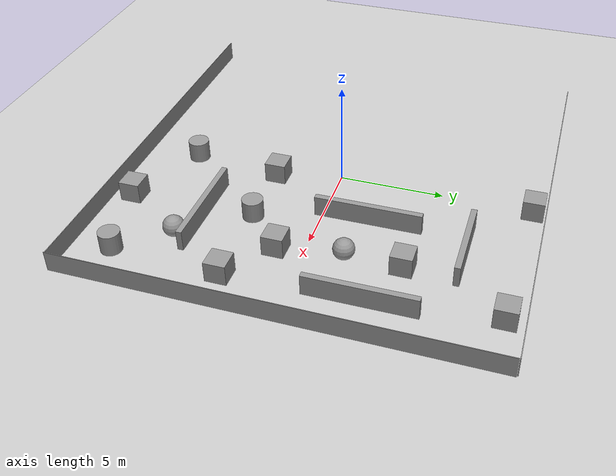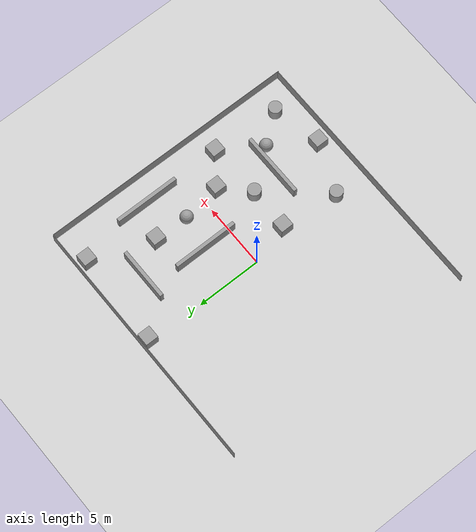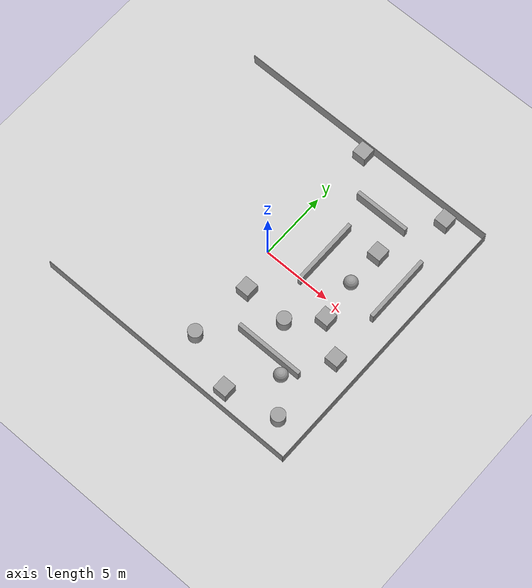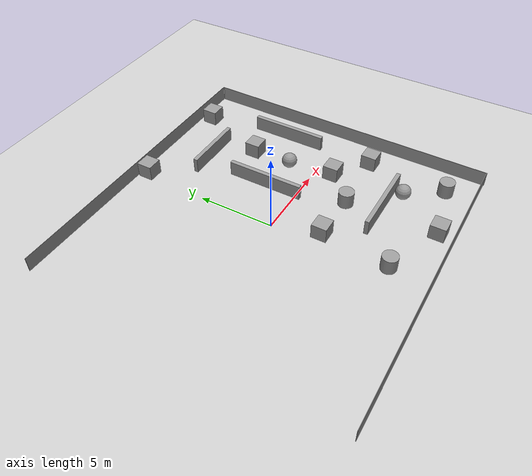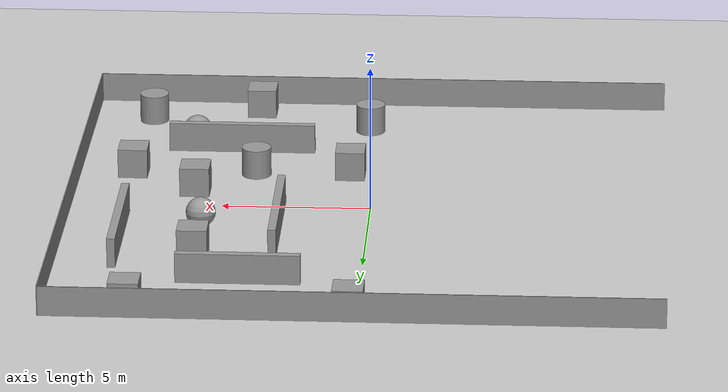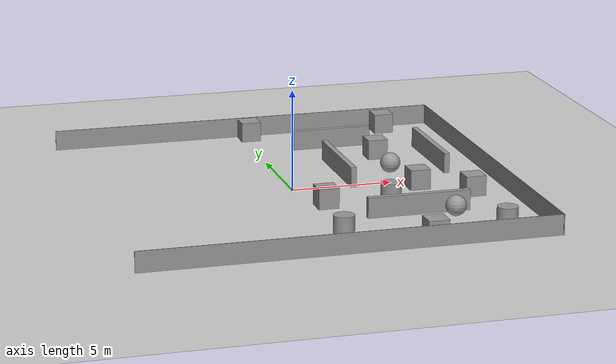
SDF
<sdf version="1.7">
 <world name="default">
  <model name="ground_plane">
   <static>1</static>
   <link name="link">
    <collision name="collision">
     <geometry><plane><normal>0 0 1</normal><size>100 100</size></plane></geometry>
     <surface>
      <contact><collide_bitmask>65535</collide_bitmask></contact>
      <friction><ode><mu>100</mu><mu2>50</mu2></ode></friction>
     </surface>
    </collision>
    <visual name="visual">
     <cast_shadows>0</cast_shadows>
     <geometry><plane><normal>0 0 1</normal><size>100 100</size></plane></geometry>
     <material>
      <script><uri>file://media/materials/scripts/gazebo.material</uri><name>Gazebo/Grey</name></script>
     </material>
    </visual>
   </link>
  </model>
  <model name="m">
   <link name="link_0">
    <inertial>
     <mass>0.665554</mass>
     <inertia><ixx>0.0555244</ixx><ixy>0</ixy><ixz>0</ixz><iyy>22.0844</iyy><iyz>0</iyz><izz>22.029</izz></inertia>
    </inertial>
    <pose>0.242404 -11.0845 0 0 -0 0</pose>
    <visual name="visual">
     <geometry><box><size>19.9295 0.033323 1</size></box></geometry>
     <material>
      <lighting>1</lighting>
      <script><uri>file://media/materials/scripts/gazebo.material</uri><name>Gazebo/Grey</name></script>
      <shader type="pixel"><normal_map>__default__</normal_map></shader>
     </material>
    </visual>
    <collision name="collision">
     <geometry><box><size>19.9295 0.033323 1</size></box></geometry>
     <surface>
      <friction>
       <ode><mu>1</mu><mu2>1</mu2><fdir1>0 0 0</fdir1><slip1>0</slip1><slip2>0</slip2></ode>
       <torsional>
        <coefficient>1</coefficient>
        <patch_radius>0</patch_radius>
        <surface_radius>0</surface_radius>
        <use_patch_radius>1</use_patch_radius>
        <ode><slip>0</slip></ode>
       </torsional>
      </friction>
      <bounce><restitution_coefficient>0</restitution_coefficient><threshold>1e+06</threshold></bounce>
      <contact>
       <collide_without_contact>0</collide_without_contact>
       <collide_without_contact_bitmask>1</collide_without_contact_bitmask>
       <collide_bitmask>1</collide_bitmask>
       <ode>
        <soft_cfm>0</soft_cfm>
        <soft_erp>0.2</soft_erp>
        <kp>1e+13</kp>
        <kd>1</kd>
        <max_vel>0.01</max_vel>
        <min_depth>0</min_depth>
       </ode>
       <bullet>
        <split_impulse>1</split_impulse>
        <split_impulse_penetration_threshold>-0.01</split_impulse_penetration_threshold>
        <soft_cfm>0</soft_cfm>
        <soft_erp>0.2</soft_erp>
        <kp>1e+13</kp>
        <kd>1</kd>
       </bullet>
      </contact>
     </surface>
    </collision>
   </link>
   <link name="link_0_0">
    <inertial>
     <mass>1</mass>
     <inertia><ixx>0.145833</ixx><ixy>0</ixy><ixz>0</ixz><iyy>0.145833</iyy><iyz>0</iyz><izz>0.125</izz></inertia>
    </inertial>
    <pose>4.20277 -4.09935 -0.034602 -0.004806 1e-06 0</pose>
    <visual name="visual">
     <geometry><cylinder><radius>0.5</radius><length>1</length></cylinder></geometry>
     <material>
      <lighting>1</lighting>
      <script><uri>file://media/materials/scripts/gazebo.material</uri><name>Gazebo/Grey</name></script>
      <shader type="pixel"/>
     </material>
    </visual>
    <collision name="collision">
     <geometry><cylinder><radius>0.5</radius><length>1</length></cylinder></geometry>
     <surface>
      <friction>
       <ode><mu>1</mu><mu2>1</mu2><fdir1>0 0 0</fdir1><slip1>0</slip1><slip2>0</slip2></ode>
       <torsional>
        <coefficient>1</coefficient>
        <patch_radius>0</patch_radius>
        <surface_radius>0</surface_radius>
        <use_patch_radius>1</use_patch_radius>
        <ode><slip>0</slip></ode>
       </torsional>
      </friction>
      <bounce><restitution_coefficient>0</restitution_coefficient><threshold>1e+06</threshold></bounce>
      <contact>
       <collide_without_contact>0</collide_without_contact>
       <collide_without_contact_bitmask>1</collide_without_contact_bitmask>
       <collide_bitmask>1</collide_bitmask>
       <ode>
        <soft_cfm>0</soft_cfm>
        <soft_erp>0.2</soft_erp>
        <kp>1e+13</kp>
        <kd>1</kd>
        <max_vel>0.01</max_vel>
        <min_depth>0</min_depth>
       </ode>
       <bullet>
        <split_impulse>1</split_impulse>
        <split_impulse_penetration_threshold>-0.01</split_impulse_penetration_threshold>
        <soft_cfm>0</soft_cfm>
        <soft_erp>0.2</soft_erp>
        <kp>1e+13</kp>
        <kd>1</kd>
       </bullet>
      </contact>
     </surface>
    </collision>
   </link>
   <link name="link_0_1">
    <inertial>
     <mass>1</mass>
     <inertia><ixx>0.1</ixx><ixy>0</ixy><ixz>0</ixz><iyy>0.1</iyy><iyz>0</iyz><izz>0.1</izz></inertia>
    </inertial>
    <pose>6.45955 -6.99136 -0.015862 -0.00386 0 0</pose>
    <visual name="visual">
     <geometry><sphere><radius>0.5</radius></sphere></geometry>
     <material>
      <lighting>1</lighting>
      <script><uri>file://media/materials/scripts/gazebo.material</uri><name>Gazebo/Grey</name></script>
      <shader type="pixel"/>
     </material>
    </visual>
    <collision name="collision">
     <geometry><sphere><radius>0.5</radius></sphere></geometry>
     <surface>
      <friction>
       <ode><mu>1</mu><mu2>1</mu2><fdir1>0 0 0</fdir1><slip1>0</slip1><slip2>0</slip2></ode>
       <torsional>
        <coefficient>1</coefficient>
        <patch_radius>0</patch_radius>
        <surface_radius>0</surface_radius>
        <use_patch_radius>1</use_patch_radius>
        <ode><slip>0</slip></ode>
       </torsional>
      </friction>
      <bounce><restitution_coefficient>0</restitution_coefficient><threshold>1e+06</threshold></bounce>
      <contact>
       <collide_without_contact>0</collide_without_contact>
       <collide_without_contact_bitmask>1</collide_without_contact_bitmask>
       <collide_bitmask>1</collide_bitmask>
       <ode>
        <soft_cfm>0</soft_cfm>
        <soft_erp>0.2</soft_erp>
        <kp>1e+13</kp>
        <kd>1</kd>
        <max_vel>0.01</max_vel>
        <min_depth>0</min_depth>
       </ode>
       <bullet>
        <split_impulse>1</split_impulse>
        <split_impulse_penetration_threshold>-0.01</split_impulse_penetration_threshold>
        <soft_cfm>0</soft_cfm>
        <soft_erp>0.2</soft_erp>
        <kp>1e+13</kp>
        <kd>1</kd>
       </bullet>
      </contact>
     </surface>
    </collision>
   </link>
   <link name="link_0_clone">
    <inertial>
     <mass>0.665554</mass>
     <inertia><ixx>0.0555244</ixx><ixy>0</ixy><ixz>0</ixz><iyy>22.0844</iyy><iyz>0</iyz><izz>22.029</izz></inertia>
    </inertial>
    <pose>0.261289 8.83473 0 0 -0 0</pose>
    <visual name="visual">
     <geometry><box><size>19.9295 0.033323 1</size></box></geometry>
     <material>
      <lighting>1</lighting>
      <script><uri>file://media/materials/scripts/gazebo.material</uri><name>Gazebo/Grey</name></script>
      <shader type="pixel"><normal_map>__default__</normal_map></shader>
     </material>
    </visual>
    <collision name="collision">
     <geometry><box><size>19.9295 0.033323 1</size></box></geometry>
     <surface>
      <friction>
       <ode><mu>1</mu><mu2>1</mu2><fdir1>0 0 0</fdir1><slip1>0</slip1><slip2>0</slip2></ode>
       <torsional>
        <coefficient>1</coefficient>
        <patch_radius>0</patch_radius>
        <surface_radius>0</surface_radius>
        <use_patch_radius>1</use_patch_radius>
        <ode><slip>0</slip></ode>
       </torsional>
      </friction>
      <bounce><restitution_coefficient>0</restitution_coefficient><threshold>1e+06</threshold></bounce>
      <contact>
       <collide_without_contact>0</collide_without_contact>
       <collide_without_contact_bitmask>1</collide_without_contact_bitmask>
       <collide_bitmask>1</collide_bitmask>
       <ode>
        <soft_cfm>0</soft_cfm>
        <soft_erp>0.2</soft_erp>
        <kp>1e+13</kp>
        <kd>1</kd>
        <max_vel>0.01</max_vel>
        <min_depth>0</min_depth>
       </ode>
       <bullet>
        <split_impulse>1</split_impulse>
        <split_impulse_penetration_threshold>-0.01</split_impulse_penetration_threshold>
        <soft_cfm>0</soft_cfm>
        <soft_erp>0.2</soft_erp>
        <kp>1e+13</kp>
        <kd>1</kd>
       </bullet>
      </contact>
     </surface>
    </collision>
   </link>
   <link name="link_0_clone_0">
    <inertial>
     <mass>0.665554</mass>
     <inertia><ixx>0.0555244</ixx><ixy>0</ixy><ixz>0</ixz><iyy>22.0844</iyy><iyz>0</iyz><izz>22.029</izz></inertia>
    </inertial>
    <pose>10.2239 -1.16779 -0 0 0 -1.57281</pose>
    <visual name="visual">
     <geometry><box><size>19.9295 0.033323 1</size></box></geometry>
     <material>
      <lighting>1</lighting>
      <script><uri>file://media/materials/scripts/gazebo.material</uri><name>Gazebo/Grey</name></script>
      <shader type="pixel"><normal_map>__default__</normal_map></shader>
     </material>
    </visual>
    <collision name="collision">
     <geometry><box><size>19.9295 0.033323 1</size></box></geometry>
     <surface>
      <friction>
       <ode><mu>1</mu><mu2>1</mu2><fdir1>0 0 0</fdir1><slip1>0</slip1><slip2>0</slip2></ode>
       <torsional>
        <coefficient>1</coefficient>
        <patch_radius>0</patch_radius>
        <surface_radius>0</surface_radius>
        <use_patch_radius>1</use_patch_radius>
        <ode><slip>0</slip></ode>
       </torsional>
      </friction>
      <bounce><restitution_coefficient>0</restitution_coefficient><threshold>1e+06</threshold></bounce>
      <contact>
       <collide_without_contact>0</collide_without_contact>
       <collide_without_contact_bitmask>1</collide_without_contact_bitmask>
       <collide_bitmask>1</collide_bitmask>
       <ode>
        <soft_cfm>0</soft_cfm>
        <soft_erp>0.2</soft_erp>
        <kp>1e+13</kp>
        <kd>1</kd>
        <max_vel>0.01</max_vel>
        <min_depth>0</min_depth>
       </ode>
       <bullet>
        <split_impulse>1</split_impulse>
        <split_impulse_penetration_threshold>-0.01</split_impulse_penetration_threshold>
        <soft_cfm>0</soft_cfm>
        <soft_erp>0.2</soft_erp>
        <kp>1e+13</kp>
        <kd>1</kd>
       </bullet>
      </contact>
     </surface>
    </collision>
   </link>
   <link name="link_1">
    <inertial>
     <mass>1.10085</mass>
     <inertia>
      <ixx>0.0985725</ixx>
      <ixy>0</ixy>
      <ixz>0</ixz>
      <iyy>1.60334</iyy>
      <iyz>0</iyz>
      <izz>1.51844</izz>
     </inertia>
    </inertial>
    <pose>4.09587 5.72765 -0.000749 0 -0 0</pose>
    <visual name="visual">
     <geometry><box><size>4.05924 0.272957 1</size></box></geometry>
     <material>
      <lighting>1</lighting>
      <script><uri>file://media/materials/scripts/gazebo.material</uri><name>Gazebo/Grey</name></script>
      <shader type="pixel"/>
     </material>
    </visual>
    <collision name="collision">
     <geometry><box><size>4.05924 0.272957 1</size></box></geometry>
     <surface>
      <friction>
       <ode><mu>1</mu><mu2>1</mu2><fdir1>0 0 0</fdir1><slip1>0</slip1><slip2>0</slip2></ode>
       <torsional>
        <coefficient>1</coefficient>
        <patch_radius>0</patch_radius>
        <surface_radius>0</surface_radius>
        <use_patch_radius>1</use_patch_radius>
        <ode><slip>0</slip></ode>
       </torsional>
      </friction>
      <bounce><restitution_coefficient>0</restitution_coefficient><threshold>1e+06</threshold></bounce>
      <contact>
       <collide_without_contact>0</collide_without_contact>
       <collide_without_contact_bitmask>1</collide_without_contact_bitmask>
       <collide_bitmask>1</collide_bitmask>
       <ode>
        <soft_cfm>0</soft_cfm>
        <soft_erp>0.2</soft_erp>
        <kp>1e+13</kp>
        <kd>1</kd>
        <max_vel>0.01</max_vel>
        <min_depth>0</min_depth>
       </ode>
       <bullet>
        <split_impulse>1</split_impulse>
        <split_impulse_penetration_threshold>-0.01</split_impulse_penetration_threshold>
        <soft_cfm>0</soft_cfm>
        <soft_erp>0.2</soft_erp>
        <kp>1e+13</kp>
        <kd>1</kd>
       </bullet>
      </contact>
     </surface>
    </collision>
   </link>
   <link name="link_10">
    <inertial>
     <mass>1</mass>
     <inertia>
      <ixx>0.166667</ixx>
      <ixy>0</ixy>
      <ixz>0</ixz>
      <iyy>0.166667</iyy>
      <iyz>0</iyz>
      <izz>0.166667</izz>
     </inertia>
    </inertial>
    <pose>8.39276 -3.93798 -0 0 -0 0</pose>
    <visual name="visual">
     <geometry><box><size>1 1 1</size></box></geometry>
     <material>
      <lighting>1</lighting>
      <script><uri>file://media/materials/scripts/gazebo.material</uri><name>Gazebo/Grey</name></script>
      <shader type="pixel"/>
     </material>
    </visual>
    <collision name="collision">
     <geometry><box><size>1 1 1</size></box></geometry>
     <surface>
      <friction>
       <ode><mu>1</mu><mu2>1</mu2><fdir1>0 0 0</fdir1><slip1>0</slip1><slip2>0</slip2></ode>
       <torsional>
        <coefficient>1</coefficient>
        <patch_radius>0</patch_radius>
        <surface_radius>0</surface_radius>
        <use_patch_radius>1</use_patch_radius>
        <ode><slip>0</slip></ode>
       </torsional>
      </friction>
      <bounce><restitution_coefficient>0</restitution_coefficient><threshold>1e+06</threshold></bounce>
      <contact>
       <collide_without_contact>0</collide_without_contact>
       <collide_without_contact_bitmask>1</collide_without_contact_bitmask>
       <collide_bitmask>1</collide_bitmask>
       <ode>
        <soft_cfm>0</soft_cfm>
        <soft_erp>0.2</soft_erp>
        <kp>1e+13</kp>
        <kd>1</kd>
        <max_vel>0.01</max_vel>
        <min_depth>0</min_depth>
       </ode>
       <bullet>
        <split_impulse>1</split_impulse>
        <split_impulse_penetration_threshold>-0.01</split_impulse_penetration_threshold>
        <soft_cfm>0</soft_cfm>
        <soft_erp>0.2</soft_erp>
        <kp>1e+13</kp>
        <kd>1</kd>
       </bullet>
      </contact>
     </surface>
    </collision>
   </link>
   <link name="link_11">
    <inertial>
     <mass>1</mass>
     <inertia>
      <ixx>0.166667</ixx>
      <ixy>0</ixy>
      <ixz>0</ixz>
      <iyy>0.166667</iyy>
      <iyz>0</iyz>
      <izz>0.166667</izz>
     </inertia>
    </inertial>
    <pose>4.41334 -10.0358 0.006324 0 -0 0</pose>
    <visual name="visual">
     <geometry><box><size>1 1 1</size></box></geometry>
     <material>
      <lighting>1</lighting>
      <script><uri>file://media/materials/scripts/gazebo.material</uri><name>Gazebo/Grey</name></script>
      <shader type="pixel"/>
     </material>
    </visual>
    <collision name="collision">
     <geometry><box><size>1 1 1</size></box></geometry>
     <surface>
      <friction>
       <ode><mu>1</mu><mu2>1</mu2><fdir1>0 0 0</fdir1><slip1>0</slip1><slip2>0</slip2></ode>
       <torsional>
        <coefficient>1</coefficient>
        <patch_radius>0</patch_radius>
        <surface_radius>0</surface_radius>
        <use_patch_radius>1</use_patch_radius>
        <ode><slip>0</slip></ode>
       </torsional>
      </friction>
      <bounce><restitution_coefficient>0</restitution_coefficient><threshold>1e+06</threshold></bounce>
      <contact>
       <collide_without_contact>0</collide_without_contact>
       <collide_without_contact_bitmask>1</collide_without_contact_bitmask>
       <collide_bitmask>1</collide_bitmask>
       <ode>
        <soft_cfm>0</soft_cfm>
        <soft_erp>0.2</soft_erp>
        <kp>1e+13</kp>
        <kd>1</kd>
        <max_vel>0.01</max_vel>
        <min_depth>0</min_depth>
       </ode>
       <bullet>
        <split_impulse>1</split_impulse>
        <split_impulse_penetration_threshold>-0.01</split_impulse_penetration_threshold>
        <soft_cfm>0</soft_cfm>
        <soft_erp>0.2</soft_erp>
        <kp>1e+13</kp>
        <kd>1</kd>
       </bullet>
      </contact>
     </surface>
    </collision>
   </link>
   <link name="link_12">
    <inertial>
     <mass>1</mass>
     <inertia>
      <ixx>0.166667</ixx>
      <ixy>0</ixy>
      <ixz>0</ixz>
      <iyy>0.166667</iyy>
      <iyz>0</iyz>
      <izz>0.166667</izz>
     </inertia>
    </inertial>
    <pose>0.990011 -4.03824 0 0 -0 0</pose>
    <visual name="visual">
     <geometry><box><size>1 1 1</size></box></geometry>
     <material>
      <lighting>1</lighting>
      <script><uri>file://media/materials/scripts/gazebo.material</uri><name>Gazebo/Grey</name></script>
      <shader type="pixel"/>
     </material>
    </visual>
    <collision name="collision">
     <geometry><box><size>1 1 1</size></box></geometry>
     <surface>
      <friction>
       <ode><mu>1</mu><mu2>1</mu2><fdir1>0 0 0</fdir1><slip1>0</slip1><slip2>0</slip2></ode>
       <torsional>
        <coefficient>1</coefficient>
        <patch_radius>0</patch_radius>
        <surface_radius>0</surface_radius>
        <use_patch_radius>1</use_patch_radius>
        <ode><slip>0</slip></ode>
       </torsional>
      </friction>
      <bounce><restitution_coefficient>0</restitution_coefficient><threshold>1e+06</threshold></bounce>
      <contact>
       <collide_without_contact>0</collide_without_contact>
       <collide_without_contact_bitmask>1</collide_without_contact_bitmask>
       <collide_bitmask>1</collide_bitmask>
       <ode>
        <soft_cfm>0</soft_cfm>
        <soft_erp>0.2</soft_erp>
        <kp>1e+13</kp>
        <kd>1</kd>
        <max_vel>0.01</max_vel>
        <min_depth>0</min_depth>
       </ode>
       <bullet>
        <split_impulse>1</split_impulse>
        <split_impulse_penetration_threshold>-0.01</split_impulse_penetration_threshold>
        <soft_cfm>0</soft_cfm>
        <soft_erp>0.2</soft_erp>
        <kp>1e+13</kp>
        <kd>1</kd>
       </bullet>
      </contact>
     </surface>
    </collision>
   </link>
   <link name="link_1_0">
    <inertial>
     <mass>1</mass>
     <inertia><ixx>0.145833</ixx><ixy>0</ixy><ixz>0</ixz><iyy>0.145833</iyy><iyz>0</iyz><izz>0.125</izz></inertia>
    </inertial>
    <pose>0.527383 -8.46897 -0.01263 -0.004806 1e-06 0</pose>
    <visual name="visual">
     <geometry><cylinder><radius>0.5</radius><length>1</length></cylinder></geometry>
     <material>
      <lighting>1</lighting>
      <script><uri>file://media/materials/scripts/gazebo.material</uri><name>Gazebo/Grey</name></script>
      <shader type="pixel"/>
     </material>
    </visual>
    <collision name="collision">
     <geometry><cylinder><radius>0.5</radius><length>1</length></cylinder></geometry>
     <surface>
      <friction>
       <ode><mu>1</mu><mu2>1</mu2><fdir1>0 0 0</fdir1><slip1>0</slip1><slip2>0</slip2></ode>
       <torsional>
        <coefficient>1</coefficient>
        <patch_radius>0</patch_radius>
        <surface_radius>0</surface_radius>
        <use_patch_radius>1</use_patch_radius>
        <ode><slip>0</slip></ode>
       </torsional>
      </friction>
      <bounce><restitution_coefficient>0</restitution_coefficient><threshold>1e+06</threshold></bounce>
      <contact>
       <collide_without_contact>0</collide_without_contact>
       <collide_without_contact_bitmask>1</collide_without_contact_bitmask>
       <collide_bitmask>1</collide_bitmask>
       <ode>
        <soft_cfm>0</soft_cfm>
        <soft_erp>0.2</soft_erp>
        <kp>1e+13</kp>
        <kd>1</kd>
        <max_vel>0.01</max_vel>
        <min_depth>0</min_depth>
       </ode>
       <bullet>
        <split_impulse>1</split_impulse>
        <split_impulse_penetration_threshold>-0.01</split_impulse_penetration_threshold>
        <soft_cfm>0</soft_cfm>
        <soft_erp>0.2</soft_erp>
        <kp>1e+13</kp>
        <kd>1</kd>
       </bullet>
      </contact>
     </surface>
    </collision>
   </link>
   <link name="link_1_1">
    <inertial>
     <mass>1</mass>
     <inertia><ixx>0.145833</ixx><ixy>0</ixy><ixz>0</ixz><iyy>0.145833</iyy><iyz>0</iyz><izz>0.125</izz></inertia>
    </inertial>
    <pose>8.17297 -9.21008 -0.018715 -0.00838 0 0</pose>
    <visual name="visual">
     <geometry><cylinder><radius>0.5</radius><length>1</length></cylinder></geometry>
     <material>
      <lighting>1</lighting>
      <script><uri>file://media/materials/scripts/gazebo.material</uri><name>Gazebo/Grey</name></script>
      <shader type="pixel"/>
     </material>
    </visual>
    <collision name="collision">
     <geometry><cylinder><radius>0.5</radius><length>1</length></cylinder></geometry>
     <surface>
      <friction>
       <ode><mu>1</mu><mu2>1</mu2><fdir1>0 0 0</fdir1><slip1>0</slip1><slip2>0</slip2></ode>
       <torsional>
        <coefficient>1</coefficient>
        <patch_radius>0</patch_radius>
        <surface_radius>0</surface_radius>
        <use_patch_radius>1</use_patch_radius>
        <ode><slip>0</slip></ode>
       </torsional>
      </friction>
      <bounce><restitution_coefficient>0</restitution_coefficient><threshold>1e+06</threshold></bounce>
      <contact>
       <collide_without_contact>0</collide_without_contact>
       <collide_without_contact_bitmask>1</collide_without_contact_bitmask>
       <collide_bitmask>1</collide_bitmask>
       <ode>
        <soft_cfm>0</soft_cfm>
        <soft_erp>0.2</soft_erp>
        <kp>1e+13</kp>
        <kd>1</kd>
        <max_vel>0.01</max_vel>
        <min_depth>0</min_depth>
       </ode>
       <bullet>
        <split_impulse>1</split_impulse>
        <split_impulse_penetration_threshold>-0.01</split_impulse_penetration_threshold>
        <soft_cfm>0</soft_cfm>
        <soft_erp>0.2</soft_erp>
        <kp>1e+13</kp>
        <kd>1</kd>
       </bullet>
      </contact>
     </surface>
    </collision>
   </link>
   <link name="link_1_clone_0">
    <inertial>
     <mass>1.36399</mass>
     <inertia><ixx>0.122135</ixx><ixy>0</ixy><ixz>0</ixz><iyy>2.98899</iyy><iyz>0</iyz><izz>2.88379</izz></inertia>
    </inertial>
    <pose>4.85556 -6.26718 0 0 -0 0</pose>
    <visual name="visual">
     <geometry><box><size>5.02953 0.272957 1</size></box></geometry>
     <material>
      <lighting>1</lighting>
      <script><uri>file://media/materials/scripts/gazebo.material</uri><name>Gazebo/Grey</name></script>
      <shader type="pixel"/>
     </material>
    </visual>
    <collision name="collision">
     <geometry><box><size>5.02953 0.272957 1</size></box></geometry>
     <surface>
      <friction>
       <ode><mu>1</mu><mu2>1</mu2><fdir1>0 0 0</fdir1><slip1>0</slip1><slip2>0</slip2></ode>
       <torsional>
        <coefficient>1</coefficient>
        <patch_radius>0</patch_radius>
        <surface_radius>0</surface_radius>
        <use_patch_radius>1</use_patch_radius>
        <ode><slip>0</slip></ode>
       </torsional>
      </friction>
      <bounce><restitution_coefficient>0</restitution_coefficient><threshold>1e+06</threshold></bounce>
      <contact>
       <collide_without_contact>0</collide_without_contact>
       <collide_without_contact_bitmask>1</collide_without_contact_bitmask>
       <collide_bitmask>1</collide_bitmask>
       <ode>
        <soft_cfm>0</soft_cfm>
        <soft_erp>0.2</soft_erp>
        <kp>1e+13</kp>
        <kd>1</kd>
        <max_vel>0.01</max_vel>
        <min_depth>0</min_depth>
       </ode>
       <bullet>
        <split_impulse>1</split_impulse>
        <split_impulse_penetration_threshold>-0.01</split_impulse_penetration_threshold>
        <soft_cfm>0</soft_cfm>
        <soft_erp>0.2</soft_erp>
        <kp>1e+13</kp>
        <kd>1</kd>
       </bullet>
      </contact>
     </surface>
    </collision>
   </link>
   <link name="link_1_clone_0_clone">
    <inertial>
     <mass>1.36399</mass>
     <inertia><ixx>0.122135</ixx><ixy>0</ixy><ixz>0</ixz><iyy>2.98899</iyy><iyz>0</iyz><izz>2.88379</izz></inertia>
    </inertial>
    <pose>3.15146 1.09668 -0.009526 0 -0 1.57365</pose>
    <visual name="visual">
     <geometry><box><size>5.02953 0.272957 1</size></box></geometry>
     <material>
      <lighting>1</lighting>
      <script><uri>file://media/materials/scripts/gazebo.material</uri><name>Gazebo/Grey</name></script>
      <shader type="pixel"/>
     </material>
    </visual>
    <collision name="collision">
     <geometry><box><size>5.02953 0.272957 1</size></box></geometry>
     <surface>
      <friction>
       <ode><mu>1</mu><mu2>1</mu2><fdir1>0 0 0</fdir1><slip1>0</slip1><slip2>0</slip2></ode>
       <torsional>
        <coefficient>1</coefficient>
        <patch_radius>0</patch_radius>
        <surface_radius>0</surface_radius>
        <use_patch_radius>1</use_patch_radius>
        <ode><slip>0</slip></ode>
       </torsional>
      </friction>
      <bounce><restitution_coefficient>0</restitution_coefficient><threshold>1e+06</threshold></bounce>
      <contact>
       <collide_without_contact>0</collide_without_contact>
       <collide_without_contact_bitmask>1</collide_without_contact_bitmask>
       <collide_bitmask>1</collide_bitmask>
       <ode>
        <soft_cfm>0</soft_cfm>
        <soft_erp>0.2</soft_erp>
        <kp>1e+13</kp>
        <kd>1</kd>
        <max_vel>0.01</max_vel>
        <min_depth>0</min_depth>
       </ode>
       <bullet>
        <split_impulse>1</split_impulse>
        <split_impulse_penetration_threshold>-0.01</split_impulse_penetration_threshold>
        <soft_cfm>0</soft_cfm>
        <soft_erp>0.2</soft_erp>
        <kp>1e+13</kp>
        <kd>1</kd>
       </bullet>
      </contact>
     </surface>
    </collision>
   </link>
   <link name="link_1_clone_0_clone_clone">
    <inertial>
     <mass>1.36399</mass>
     <inertia><ixx>0.122135</ixx><ixy>0</ixy><ixz>0</ixz><iyy>2.98899</iyy><iyz>0</iyz><izz>2.88379</izz></inertia>
    </inertial>
    <pose>8.31243 2.17568 0.002399 0 -0 1.57366</pose>
    <visual name="visual">
     <geometry><box><size>5.02953 0.272957 1</size></box></geometry>
     <material>
      <lighting>1</lighting>
      <script><uri>file://media/materials/scripts/gazebo.material</uri><name>Gazebo/Grey</name></script>
      <shader type="pixel"/>
     </material>
    </visual>
    <collision name="collision">
     <geometry><box><size>5.02953 0.272957 1</size></box></geometry>
     <surface>
      <friction>
       <ode><mu>1</mu><mu2>1</mu2><fdir1>0 0 0</fdir1><slip1>0</slip1><slip2>0</slip2></ode>
       <torsional>
        <coefficient>1</coefficient>
        <patch_radius>0</patch_radius>
        <surface_radius>0</surface_radius>
        <use_patch_radius>1</use_patch_radius>
        <ode><slip>0</slip></ode>
       </torsional>
      </friction>
      <bounce><restitution_coefficient>0</restitution_coefficient><threshold>1e+06</threshold></bounce>
      <contact>
       <collide_without_contact>0</collide_without_contact>
       <collide_without_contact_bitmask>1</collide_without_contact_bitmask>
       <collide_bitmask>1</collide_bitmask>
       <ode>
        <soft_cfm>0</soft_cfm>
        <soft_erp>0.2</soft_erp>
        <kp>1e+13</kp>
        <kd>1</kd>
        <max_vel>0.01</max_vel>
        <min_depth>0</min_depth>
       </ode>
       <bullet>
        <split_impulse>1</split_impulse>
        <split_impulse_penetration_threshold>-0.01</split_impulse_penetration_threshold>
        <soft_cfm>0</soft_cfm>
        <soft_erp>0.2</soft_erp>
        <kp>1e+13</kp>
        <kd>1</kd>
       </bullet>
      </contact>
     </surface>
    </collision>
   </link>
   <link name="link_4_0">
    <inertial>
     <mass>1</mass>
     <inertia><ixx>0.1</ixx><ixy>0</ixy><ixz>0</ixz><iyy>0.1</iyy><iyz>0</iyz><izz>0.1</izz></inertia>
    </inertial>
    <pose>5.70846 0.722794 -0.05681 -0.004806 1e-06 0</pose>
    <visual name="visual">
     <geometry><sphere><radius>0.5</radius></sphere></geometry>
     <material>
      <lighting>1</lighting>
      <script><uri>file://media/materials/scripts/gazebo.material</uri><name>Gazebo/Grey</name></script>
      <shader type="pixel"/>
     </material>
    </visual>
    <collision name="collision">
     <geometry><sphere><radius>0.5</radius></sphere></geometry>
     <surface>
      <friction>
       <ode><mu>1</mu><mu2>1</mu2><fdir1>0 0 0</fdir1><slip1>0</slip1><slip2>0</slip2></ode>
       <torsional>
        <coefficient>1</coefficient>
        <patch_radius>0</patch_radius>
        <surface_radius>0</surface_radius>
        <use_patch_radius>1</use_patch_radius>
        <ode><slip>0</slip></ode>
       </torsional>
      </friction>
      <bounce><restitution_coefficient>0</restitution_coefficient><threshold>1e+06</threshold></bounce>
      <contact>
       <collide_without_contact>0</collide_without_contact>
       <collide_without_contact_bitmask>1</collide_without_contact_bitmask>
       <collide_bitmask>1</collide_bitmask>
       <ode>
        <soft_cfm>0</soft_cfm>
        <soft_erp>0.2</soft_erp>
        <kp>1e+13</kp>
        <kd>1</kd>
        <max_vel>0.01</max_vel>
        <min_depth>0</min_depth>
       </ode>
       <bullet>
        <split_impulse>1</split_impulse>
        <split_impulse_penetration_threshold>-0.01</split_impulse_penetration_threshold>
        <soft_cfm>0</soft_cfm>
        <soft_erp>0.2</soft_erp>
        <kp>1e+13</kp>
        <kd>1</kd>
       </bullet>
      </contact>
     </surface>
    </collision>
   </link>
   <link name="link_6">
    <inertial>
     <mass>1</mass>
     <inertia>
      <ixx>0.166667</ixx>
      <ixy>0</ixy>
      <ixz>0</ixz>
      <iyy>0.166667</iyy>
      <iyz>0</iyz>
      <izz>0.166667</izz>
     </inertia>
    </inertial>
    <pose>0.389233 8.23688 -0.005945 0 -0 0</pose>
    <visual name="visual">
     <geometry><box><size>1 1 1</size></box></geometry>
     <material>
      <lighting>1</lighting>
      <script><uri>file://media/materials/scripts/gazebo.material</uri><name>Gazebo/Grey</name></script>
      <shader type="pixel"/>
     </material>
    </visual>
    <collision name="collision">
     <geometry><box><size>1 1 1</size></box></geometry>
     <surface>
      <friction>
       <ode><mu>1</mu><mu2>1</mu2><fdir1>0 0 0</fdir1><slip1>0</slip1><slip2>0</slip2></ode>
       <torsional>
        <coefficient>1</coefficient>
        <patch_radius>0</patch_radius>
        <surface_radius>0</surface_radius>
        <use_patch_radius>1</use_patch_radius>
        <ode><slip>0</slip></ode>
       </torsional>
      </friction>
      <bounce><restitution_coefficient>0</restitution_coefficient><threshold>1e+06</threshold></bounce>
      <contact>
       <collide_without_contact>0</collide_without_contact>
       <collide_without_contact_bitmask>1</collide_without_contact_bitmask>
       <collide_bitmask>1</collide_bitmask>
       <ode>
        <soft_cfm>0</soft_cfm>
        <soft_erp>0.2</soft_erp>
        <kp>1e+13</kp>
        <kd>1</kd>
        <max_vel>0.01</max_vel>
        <min_depth>0</min_depth>
       </ode>
       <bullet>
        <split_impulse>1</split_impulse>
        <split_impulse_penetration_threshold>-0.01</split_impulse_penetration_threshold>
        <soft_cfm>0</soft_cfm>
        <soft_erp>0.2</soft_erp>
        <kp>1e+13</kp>
        <kd>1</kd>
       </bullet>
      </contact>
     </surface>
    </collision>
   </link>
   <link name="link_7">
    <inertial>
     <mass>1</mass>
     <inertia>
      <ixx>0.166667</ixx>
      <ixy>0</ixy>
      <ixz>0</ixz>
      <iyy>0.166667</iyy>
      <iyz>0</iyz>
      <izz>0.166667</izz>
     </inertia>
    </inertial>
    <pose>7.53785 7.99892 -0.00218 0 -0 0</pose>
    <visual name="visual">
     <geometry><box><size>1 1 1</size></box></geometry>
     <material>
      <lighting>1</lighting>
      <script><uri>file://media/materials/scripts/gazebo.material</uri><name>Gazebo/Grey</name></script>
      <shader type="pixel"/>
     </material>
    </visual>
    <collision name="collision">
     <geometry><box><size>1 1 1</size></box></geometry>
     <surface>
      <friction>
       <ode><mu>1</mu><mu2>1</mu2><fdir1>0 0 0</fdir1><slip1>0</slip1><slip2>0</slip2></ode>
       <torsional>
        <coefficient>1</coefficient>
        <patch_radius>0</patch_radius>
        <surface_radius>0</surface_radius>
        <use_patch_radius>1</use_patch_radius>
        <ode><slip>0</slip></ode>
       </torsional>
      </friction>
      <bounce><restitution_coefficient>0</restitution_coefficient><threshold>1e+06</threshold></bounce>
      <contact>
       <collide_without_contact>0</collide_without_contact>
       <collide_without_contact_bitmask>1</collide_without_contact_bitmask>
       <collide_bitmask>1</collide_bitmask>
       <ode>
        <soft_cfm>0</soft_cfm>
        <soft_erp>0.2</soft_erp>
        <kp>1e+13</kp>
        <kd>1</kd>
        <max_vel>0.01</max_vel>
        <min_depth>0</min_depth>
       </ode>
       <bullet>
        <split_impulse>1</split_impulse>
        <split_impulse_penetration_threshold>-0.01</split_impulse_penetration_threshold>
        <soft_cfm>0</soft_cfm>
        <soft_erp>0.2</soft_erp>
        <kp>1e+13</kp>
        <kd>1</kd>
       </bullet>
      </contact>
     </surface>
    </collision>
   </link>
   <link name="link_8">
    <inertial>
     <mass>1</mass>
     <inertia>
      <ixx>0.166667</ixx>
      <ixy>0</ixy>
      <ixz>0</ixz>
      <iyy>0.166667</iyy>
      <iyz>0</iyz>
      <izz>0.166667</izz>
     </inertia>
    </inertial>
    <pose>5.74929 3.3638 -0 0 -0 0</pose>
    <visual name="visual">
     <geometry><box><size>1 1 1</size></box></geometry>
     <material>
      <lighting>1</lighting>
      <script><uri>file://media/materials/scripts/gazebo.material</uri><name>Gazebo/Grey</name></script>
      <shader type="pixel"/>
     </material>
    </visual>
    <collision name="collision">
     <geometry><box><size>1 1 1</size></box></geometry>
     <surface>
      <friction>
       <ode><mu>1</mu><mu2>1</mu2><fdir1>0 0 0</fdir1><slip1>0</slip1><slip2>0</slip2></ode>
       <torsional>
        <coefficient>1</coefficient>
        <patch_radius>0</patch_radius>
        <surface_radius>0</surface_radius>
        <use_patch_radius>1</use_patch_radius>
        <ode><slip>0</slip></ode>
       </torsional>
      </friction>
      <bounce><restitution_coefficient>0</restitution_coefficient><threshold>1e+06</threshold></bounce>
      <contact>
       <collide_without_contact>0</collide_without_contact>
       <collide_without_contact_bitmask>1</collide_without_contact_bitmask>
       <collide_bitmask>1</collide_bitmask>
       <ode>
        <soft_cfm>0</soft_cfm>
        <soft_erp>0.2</soft_erp>
        <kp>1e+13</kp>
        <kd>1</kd>
        <max_vel>0.01</max_vel>
        <min_depth>0</min_depth>
       </ode>
       <bullet>
        <split_impulse>1</split_impulse>
        <split_impulse_penetration_threshold>-0.01</split_impulse_penetration_threshold>
        <soft_cfm>0</soft_cfm>
        <soft_erp>0.2</soft_erp>
        <kp>1e+13</kp>
        <kd>1</kd>
       </bullet>
      </contact>
     </surface>
    </collision>
   </link>
   <link name="link_9">
    <inertial>
     <mass>1</mass>
     <inertia>
      <ixx>0.166667</ixx>
      <ixy>0</ixy>
      <ixz>0</ixz>
      <iyy>0.166667</iyy>
      <iyz>0</iyz>
      <izz>0.166667</izz>
     </inertia>
    </inertial>
    <pose>6.14008 -2.25671 0.003916 0 -0 0</pose>
    <visual name="visual">
     <geometry><box><size>1 1 1</size></box></geometry>
     <material>
      <lighting>1</lighting>
      <script><uri>file://media/materials/scripts/gazebo.material</uri><name>Gazebo/Grey</name></script>
      <shader type="pixel"/>
     </material>
    </visual>
    <collision name="collision">
     <geometry><box><size>1 1 1</size></box></geometry>
     <surface>
      <friction>
       <ode><mu>1</mu><mu2>1</mu2><fdir1>0 0 0</fdir1><slip1>0</slip1><slip2>0</slip2></ode>
       <torsional>
        <coefficient>1</coefficient>
        <patch_radius>0</patch_radius>
        <surface_radius>0</surface_radius>
        <use_patch_radius>1</use_patch_radius>
        <ode><slip>0</slip></ode>
       </torsional>
      </friction>
      <bounce><restitution_coefficient>0</restitution_coefficient><threshold>1e+06</threshold></bounce>
      <contact>
       <collide_without_contact>0</collide_without_contact>
       <collide_without_contact_bitmask>1</collide_without_contact_bitmask>
       <collide_bitmask>1</collide_bitmask>
       <ode>
        <soft_cfm>0</soft_cfm>
        <soft_erp>0.2</soft_erp>
        <kp>1e+13</kp>
        <kd>1</kd>
        <max_vel>0.01</max_vel>
        <min_depth>0</min_depth>
       </ode>
       <bullet>
        <split_impulse>1</split_impulse>
        <split_impulse_penetration_threshold>-0.01</split_impulse_penetration_threshold>
        <soft_cfm>0</soft_cfm>
        <soft_erp>0.2</soft_erp>
        <kp>1e+13</kp>
        <kd>1</kd>
       </bullet>
      </contact>
     </surface>
    </collision>
   </link>
   <static>0</static>
   <pose>-0.158128 1.05832 0.542852 0.00386 -0 0</pose>
  </model>
 </world>
</sdf>
